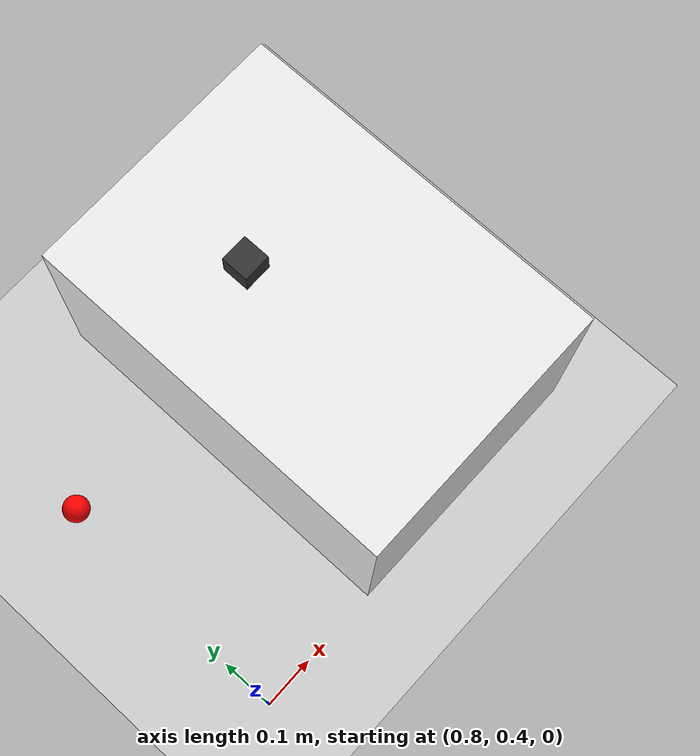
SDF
<?xml version="1.0"?>
<sdf version="1.8">
  <world name="fetch_pick_and_place">

    <physics type="ode" name="fetch_physics">
      <max_step_size>0.002</max_step_size>
      <real_time_factor>1.0</real_time_factor>
      <real_time_update_rate>500</real_time_update_rate>
    </physics>

    <!-- Directional light, equivalent to the MuJoCo light0. -->
    <include>
      <uri>model://sun</uri>
    </include>

    <!-- Ground plane. -->
    <include>
      <uri>model://ground_plane</uri>
    </include>

    <!-- table0: table top surface at z = 0.4 m (box center at z = 0.2). -->
    <model name="table0">
      <static>true</static>
      <pose>1.3 0.75 0.2 0 0 0</pose>
      <link name="link">
        <collision name="collision">
          <geometry>
            <box>
              <size>0.5 0.7 0.4</size>
            </box>
          </geometry>
        </collision>
        <visual name="visual">
          <geometry>
            <box>
              <size>0.5 0.7 0.4</size>
            </box>
          </geometry>
          <material>
            <ambient>0.93 0.93 0.93 1</ambient>
            <diffuse>0.93 0.93 0.93 1</diffuse>
            <specular>0.5 0.5 0.5 1</specular>
          </material>
        </visual>
      </link>
    </model>

    <!-- object0: the block to pick and place (5 cm cube, 2 kg). -->
    <model name="object0">
      <pose>1.25 0.85 0.42 0 0 0</pose>
      <link name="link">
        <inertial>
          <mass>2.0</mass>
          <inertia>
            <!-- I = m * a^2 / 6 for a cube of side a = 0.05 m. -->
            <ixx>0.000833</ixx>
            <ixy>0.0</ixy>
            <ixz>0.0</ixz>
            <iyy>0.000833</iyy>
            <iyz>0.0</iyz>
            <izz>0.000833</izz>
          </inertia>
        </inertial>
        <collision name="collision">
          <geometry>
            <box>
              <size>0.05 0.05 0.05</size>
            </box>
          </geometry>
        </collision>
        <visual name="visual">
          <geometry>
            <box>
              <size>0.05 0.05 0.05</size>
            </box>
          </geometry>
          <material>
            <ambient>0.2 0.2 0.2 1</ambient>
            <diffuse>0.2 0.2 0.2 1</diffuse>
          </material>
        </visual>
      </link>
    </model>

    <!-- target0: goal marker (static red sphere, radius 0.02 m). -->
    <model name="target0">
      <static>true</static>
      <pose>0.8 0.75 0.5 0 0 0</pose>
      <link name="link">
        <visual name="visual">
          <geometry>
            <sphere>
              <radius>0.02</radius>
            </sphere>
          </geometry>
          <material>
            <ambient>1 0 0 1</ambient>
            <diffuse>1 0 0 1</diffuse>
          </material>
        </visual>
      </link>
    </model>

  </world>
</sdf>
